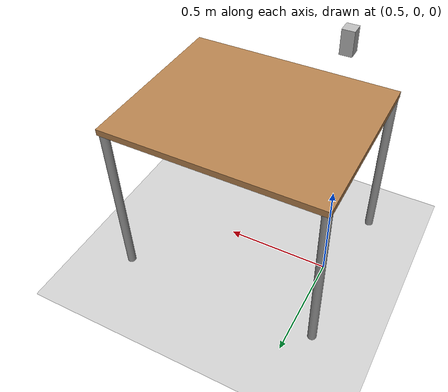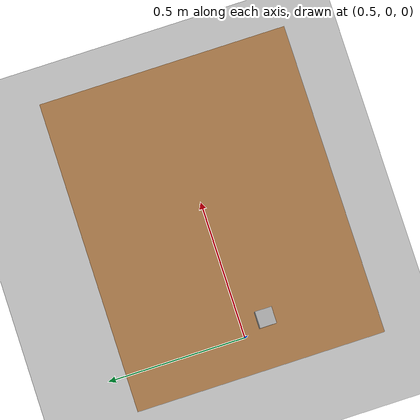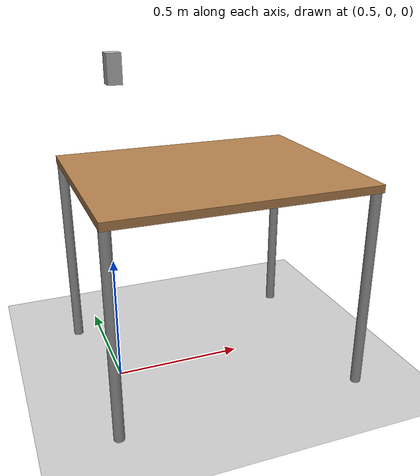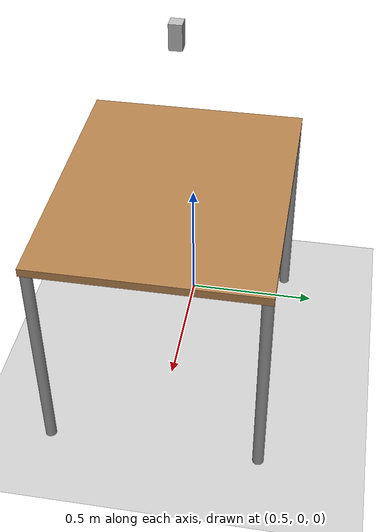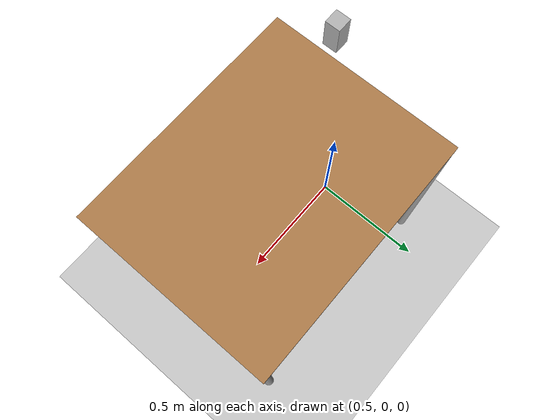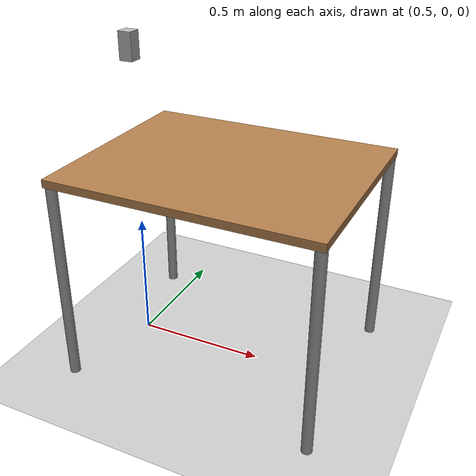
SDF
<?xml version="1.0" ?>
<sdf version="1.4">
  <world name="default">
    <physics type="ode">
      <gravity>0 0 -9.81</gravity>
      <ode>
        <solver>
          <type>quick</type>
          <iters>20</iters>
          <sor>1.0</sor>
        </solver>
        <constraints>
          <cfm>0.0</cfm>
          <erp>0.2</erp>
          <contact_max_correcting_vel>100.0</contact_max_correcting_vel>
          <contact_surface_layer>0.0</contact_surface_layer>
        </constraints>
      </ode>
      <real_time_update_rate>1000</real_time_update_rate>
      <max_step_size>0.001</max_step_size>
    </physics>
    <light type="directional" name="light1">
      <cast_shadows>true</cast_shadows>
      <pose>-2 0 4 0 0 0</pose>
      <diffuse>1.0 1.0 1.0 1</diffuse>
      <specular>0.1 0.1 0.1 1</specular>
      <attenuation>
        <range>20</range>
        <constant>0.9</constant>
        <linear>0.01</linear>
        <quadratic>0.001</quadratic>
      </attenuation>
      <direction>0.2 0.0 -1.0</direction>
    </light>
    <!-- A ground plane -->
    <include>
      <uri>model://ground_plane</uri>
    </include>
    <!-- A table -->
    <include>
      <uri>model://table_0m8</uri>
      <name>table1</name>
      <pose>0.88 0 0 0 0 0</pose>
    </include>
    <!-- Cube with ArUco markers on the sides -->
    <include>
      <uri>model://aruco_cube</uri>
      <pose>0.53 -0.05 1.2 0 0 0</pose>
    </include>

    <gui fullscreen="0">
      <camera name="user_camera">
        <pose>1.152670 -0.041479 3.496780 0.000000 1.123640 3.132190</pose>
        <view_controller>orbit</view_controller>
      </camera>
    </gui>
  </world>
</sdf>

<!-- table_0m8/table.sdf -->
<sdf version='1.4'>
<model name='table'>
      <static>1</static>
      <link name='link'>
        <collision name='surface'>
          <pose>0.000000 0.000000 0.800000 0.000000 0.000000 0.000000</pose>
          <geometry>
            <box>
              <size>1.000000 0.800000 0.030000</size>
            </box>
          </geometry>
          <surface>
            <bounce/>
            <friction>
              <ode/>
            </friction>
            <contact>
              <ode/>
            </contact>
          </surface>
        </collision>
        <visual name='visual1'>
          <pose>0.000000 0.000000 0.800000 0.000000 0.000000 0.000000</pose>
          <geometry>
            <box>
              <size>1.000000 0.800000 0.030000</size>
            </box>
          </geometry>
          <material>
            <script>
              <uri>file://media/materials/scripts/gazebo.material</uri>
              <name>Gazebo/Wood</name>
            </script>
          </material>
        </visual>
        <collision name='front_left_leg'>
          <pose>0.480000 0.380000 0.400000 0.000000 0.000000 0.000000</pose>
          <geometry>
            <cylinder>
              <radius>0.020000</radius>
              <length>0.800000</length>
            </cylinder>
          </geometry>
          <surface>
            <bounce/>
            <friction>
              <ode/>
            </friction>
            <contact>
              <ode/>
            </contact>
          </surface>
        </collision>
        <visual name='front_left_leg'>
          <pose>0.480000 0.380000 0.400000 0.000000 0.000000 0.000000</pose>
          <geometry>
            <cylinder>
              <radius>0.020000</radius>
              <length>0.800000</length>
            </cylinder>
          </geometry>
          <material>
            <script>
              <uri>file://media/materials/scripts/gazebo.material</uri>
              <name>Gazebo/Grey</name>
            </script>
          </material>
        </visual>
        <collision name='front_right_leg'>
          <pose>0.480000 -0.380000 0.400000 0.000000 0.000000 0.000000</pose>
          <geometry>
            <cylinder>
              <radius>0.020000</radius>
              <length>0.800000</length>
            </cylinder>
          </geometry>
          <surface>
            <bounce/>
            <friction>
              <ode/>
            </friction>
            <contact>
              <ode/>
            </contact>
          </surface>
        </collision>
        <visual name='front_right_leg'>
          <pose>0.480000 -0.380000 0.400000 0.000000 0.000000 0.000000</pose>
          <geometry>
            <cylinder>
              <radius>0.020000</radius>
              <length>0.800000</length>
            </cylinder>
          </geometry>
          <material>
            <script>
              <uri>file://media/materials/scripts/gazebo.material</uri>
              <name>Gazebo/Grey</name>
            </script>
          </material>
        </visual>
        <collision name='back_right_leg'>
          <pose>-0.480000 -0.380000 0.400000 0.000000 0.000000 0.000000</pose>
          <geometry>
            <cylinder>
              <radius>0.020000</radius>
              <length>0.800000</length>
            </cylinder>
          </geometry>
          <surface>
            <bounce/>
            <friction>
              <ode/>
            </friction>
            <contact>
              <ode/>
            </contact>
          </surface>
        </collision>
        <visual name='back_right_leg'>
          <pose>-0.480000 -0.380000 0.400000 0.000000 0.000000 0.000000</pose>
          <geometry>
            <cylinder>
              <radius>0.020000</radius>
              <length>0.800000</length>
            </cylinder>
          </geometry>
          <material>
            <script>
              <uri>file://media/materials/scripts/gazebo.material</uri>
              <name>Gazebo/Grey</name>
            </script>
          </material>
        </visual>
        <collision name='back_left_leg'>
          <pose>-0.480000 0.380000 0.400000 0.000000 0.000000 0.000000</pose>
          <geometry>
            <cylinder>
              <radius>0.020000</radius>
              <length>0.800000</length>
            </cylinder>
          </geometry>
          <surface>
            <bounce/>
            <friction>
              <ode/>
            </friction>
            <contact>
              <ode/>
            </contact>
          </surface>
        </collision>
        <visual name='back_left_leg'>
          <pose>-0.480000 0.380000 0.400000 0.000000 0.000000 0.000000</pose>
          <geometry>
            <cylinder>
              <radius>0.020000</radius>
              <length>0.800000</length>
            </cylinder>
          </geometry>
          <material>
            <script>
              <uri>file://media/materials/scripts/gazebo.material</uri>
              <name>Gazebo/Grey</name>
            </script>
          </material>
        </visual>
        <velocity_decay>
          <linear>0.000000</linear>
          <angular>0.000000</angular>
        </velocity_decay>
        <self_collide>0</self_collide>
        <kinematic>0</kinematic>
        <gravity>1</gravity>
      </link>
    </model>
</sdf>

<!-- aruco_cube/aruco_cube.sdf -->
<sdf version="1.4">
  <model name="aruco_cube">
    <static>0</static>
    <link name="link">

      <inertial>
        <mass>0.05</mass>
        <inertia>
          <ixx>0.000052083</ixx>
          <ixy>0.0</ixy>
          <ixz>0.0</ixz>
          <iyy>0.000052083</iyy>
          <iyz>0.0</iyz>
          <izz>0.000020833</izz>
        </inertia>
      </inertial>

      <collision name="colision">
        <pose>0 0 0 0 0 0</pose>
          <geometry>
            <box>
              <size>0.05 0.05 0.1</size>
            </box>
          </geometry>
        <surface>
          <friction>
            <ode>
              <mu>30.0</mu>
              <mu2>30.0</mu2>
              <fdir1>0 0 0</fdir1>
            </ode>
          </friction>
          <contact>
            <ode>
              <kp>1000000.0</kp>
              <kd>100.0</kd>
              <min_depth>0.0025</min_depth>
              <max_vel>1.0</max_vel>
            </ode>
          </contact>
        </surface>
      </collision>

      <visual name="visual1">
        <pose>0 0 0 0 0 0</pose>
        <geometry>
          <mesh>
            <uri>model://aruco_cube/meshes/aruco_cube_5cm.dae</uri>
	    <scale> 1 1 2 </scale>
          </mesh>
        </geometry>
      </visual>

      <velocity_decay>
        <linear>0.000000</linear>
        <angular>0.000000</angular>
      </velocity_decay>
      <self_collide>0</self_collide>
      <kinematic>0</kinematic>
      <gravity>1</gravity>
    </link>
  </model>
</sdf>
